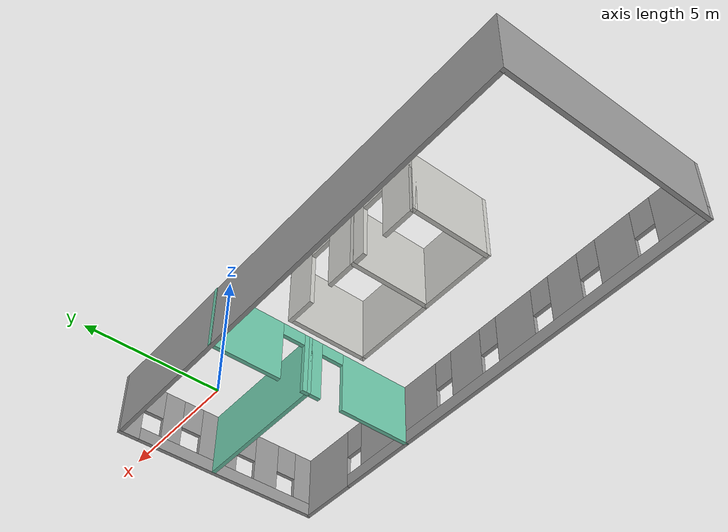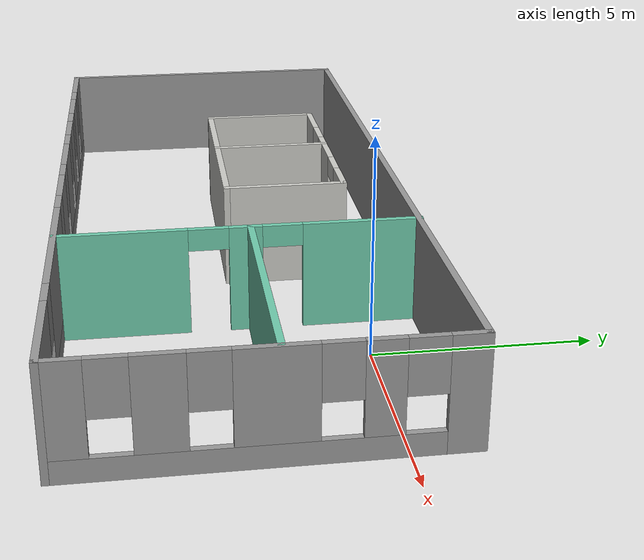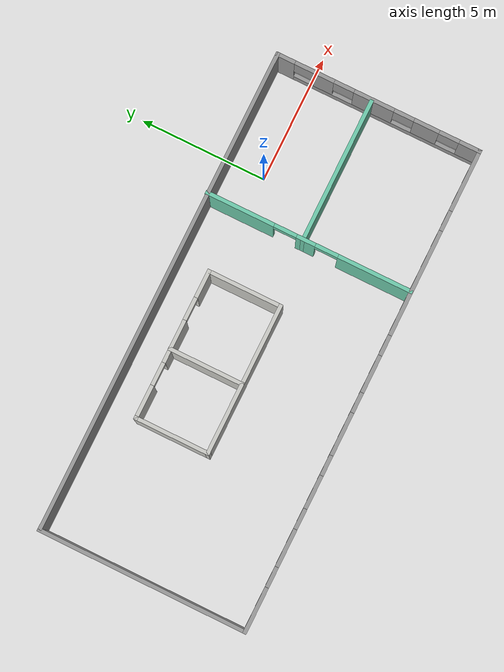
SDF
<?xml version='1.0'?>
<sdf version='1.6'>
  <model name='Building'>
    <pose frame=''>-5.59672 -2.64945 0 0 -0 0</pose>
    <link name='Wall_10'>
      <pose frame=''>0 -4.06159 0 0 -0 3.14159</pose>
      <visual name='Wall_10_Visual_0'>
        <pose frame=''>-8.37928 0 1.25 0 -0 0</pose>
        <geometry>
          <box>
            <size>2.49144 0.15 2.5</size>
          </box>
        </geometry>
        <material>
          <script>
            <uri>file://media/materials/scripts/gazebo.material</uri>
            <name>Gazebo/Grey</name>
          </script>
          <ambient>1 1 1 1</ambient>
        </material>
        <meta>
          <layer>0</layer>
        </meta>
      </visual>
      <collision name='Wall_10_Collision_0'>
        <geometry>
          <box>
            <size>2.49144 0.15 2.5</size>
          </box>
        </geometry>
        <pose frame=''>-8.37928 0 1.25 0 -0 0</pose>
      </collision>
      <visual name='Wall_10_Visual_1'>
        <pose frame=''>1.24572 0 0.25 0 -0 0</pose>
        <geometry>
          <box>
            <size>16.7586 0.15 0.5</size>
          </box>
        </geometry>
        <material>
          <script>
            <uri>file://media/materials/scripts/gazebo.material</uri>
            <name>Gazebo/Grey</name>
          </script>
          <ambient>1 1 1 1</ambient>
        </material>
        <meta>
          <layer>0</layer>
        </meta>
      </visual>
      <collision name='Wall_10_Collision_1'>
        <geometry>
          <box>
            <size>16.7586 0.15 0.5</size>
          </box>
        </geometry>
        <pose frame=''>1.24572 0 0.25 0 -0 0</pose>
      </collision>
      <visual name='Wall_10_Visual_2'>
        <pose frame=''>-4.235 0 1.5 0 -0 0</pose>
        <geometry>
          <box>
            <size>4.19712 0.15 2</size>
          </box>
        </geometry>
        <material>
          <script>
            <uri>file://media/materials/scripts/gazebo.material</uri>
            <name>Gazebo/Grey</name>
          </script>
          <ambient>1 1 1 1</ambient>
        </material>
        <meta>
          <layer>0</layer>
        </meta>
      </visual>
      <collision name='Wall_10_Collision_2'>
        <geometry>
          <box>
            <size>4.19712 0.15 2</size>
          </box>
        </geometry>
        <pose frame=''>-4.235 0 1.5 0 -0 0</pose>
      </collision>
      <visual name='Wall_10_Visual_3'>
        <pose frame=''>-0.596746 0 1.5 0 -0 0</pose>
        <geometry>
          <box>
            <size>1.47939 0.15 2</size>
          </box>
        </geometry>
        <material>
          <script>
            <uri>file://media/materials/scripts/gazebo.material</uri>
            <name>Gazebo/Grey</name>
          </script>
          <ambient>1 1 1 1</ambient>
        </material>
        <meta>
          <layer>0</layer>
        </meta>
      </visual>
      <collision name='Wall_10_Collision_3'>
        <geometry>
          <box>
            <size>1.47939 0.15 2</size>
          </box>
        </geometry>
        <pose frame=''>-0.596746 0 1.5 0 -0 0</pose>
      </collision>
      <visual name='Wall_10_Visual_4'>
        <pose frame=''>1.78785 0 1.5 0 -0 0</pose>
        <geometry>
          <box>
            <size>1.68979 0.15 2</size>
          </box>
        </geometry>
        <material>
          <script>
            <uri>file://media/materials/scripts/gazebo.material</uri>
            <name>Gazebo/Grey</name>
          </script>
          <ambient>1 1 1 1</ambient>
        </material>
        <meta>
          <layer>0</layer>
        </meta>
      </visual>
      <collision name='Wall_10_Collision_4'>
        <geometry>
          <box>
            <size>1.68979 0.15 2</size>
          </box>
        </geometry>
        <pose frame=''>1.78785 0 1.5 0 -0 0</pose>
      </collision>
      <visual name='Wall_10_Visual_5'>
        <pose frame=''>4.08477 0 1.5 0 -0 0</pose>
        <geometry>
          <box>
            <size>1.30405 0.15 2</size>
          </box>
        </geometry>
        <material>
          <script>
            <uri>file://media/materials/scripts/gazebo.material</uri>
            <name>Gazebo/Grey</name>
          </script>
          <ambient>1 1 1 1</ambient>
        </material>
        <meta>
          <layer>0</layer>
        </meta>
      </visual>
      <collision name='Wall_10_Collision_5'>
        <geometry>
          <box>
            <size>1.30405 0.15 2</size>
          </box>
        </geometry>
        <pose frame=''>4.08477 0 1.5 0 -0 0</pose>
      </collision>
      <visual name='Wall_10_Visual_6'>
        <pose frame=''>6.27649 0 1.5 0 -0 0</pose>
        <geometry>
          <box>
            <size>1.47939 0.15 2</size>
          </box>
        </geometry>
        <material>
          <script>
            <uri>file://media/materials/scripts/gazebo.material</uri>
            <name>Gazebo/Grey</name>
          </script>
          <ambient>1 1 1 1</ambient>
        </material>
        <meta>
          <layer>0</layer>
        </meta>
      </visual>
      <collision name='Wall_10_Collision_6'>
        <geometry>
          <box>
            <size>1.47939 0.15 2</size>
          </box>
        </geometry>
        <pose frame=''>6.27649 0 1.5 0 -0 0</pose>
      </collision>
      <visual name='Wall_10_Visual_7'>
        <pose frame=''>8.72059 0 1.5 0 -0 0</pose>
        <geometry>
          <box>
            <size>1.80882 0.15 2</size>
          </box>
        </geometry>
        <material>
          <script>
            <uri>file://media/materials/scripts/gazebo.material</uri>
            <name>Gazebo/Grey</name>
          </script>
          <ambient>1 1 1 1</ambient>
        </material>
        <meta>
          <layer>0</layer>
        </meta>
      </visual>
      <collision name='Wall_10_Collision_7'>
        <geometry>
          <box>
            <size>1.80882 0.15 2</size>
          </box>
        </geometry>
        <pose frame=''>8.72059 0 1.5 0 -0 0</pose>
      </collision>
      <visual name='Wall_10_Visual_8'>
        <pose frame=''>-6.73356 0 1.9 0 -0 0</pose>
        <geometry>
          <box>
            <size>0.8 0.15 1.2</size>
          </box>
        </geometry>
        <material>
          <script>
            <uri>file://media/materials/scripts/gazebo.material</uri>
            <name>Gazebo/Grey</name>
          </script>
          <ambient>1 1 1 1</ambient>
        </material>
        <meta>
          <layer>0</layer>
        </meta>
      </visual>
      <collision name='Wall_10_Collision_8'>
        <geometry>
          <box>
            <size>0.8 0.15 1.2</size>
          </box>
        </geometry>
        <pose frame=''>-6.73356 0 1.9 0 -0 0</pose>
      </collision>
      <visual name='Wall_10_Visual_9'>
        <pose frame=''>-1.73644 0 1.9 0 -0 0</pose>
        <geometry>
          <box>
            <size>0.8 0.15 1.2</size>
          </box>
        </geometry>
        <material>
          <script>
            <uri>file://media/materials/scripts/gazebo.material</uri>
            <name>Gazebo/Grey</name>
          </script>
          <ambient>1 1 1 1</ambient>
        </material>
        <meta>
          <layer>0</layer>
        </meta>
      </visual>
      <collision name='Wall_10_Collision_9'>
        <geometry>
          <box>
            <size>0.8 0.15 1.2</size>
          </box>
        </geometry>
        <pose frame=''>-1.73644 0 1.9 0 -0 0</pose>
      </collision>
      <visual name='Wall_10_Visual_10'>
        <pose frame=''>0.542949 0 1.9 0 -0 0</pose>
        <geometry>
          <box>
            <size>0.8 0.15 1.2</size>
          </box>
        </geometry>
        <material>
          <script>
            <uri>file://media/materials/scripts/gazebo.material</uri>
            <name>Gazebo/Grey</name>
          </script>
          <ambient>1 1 1 1</ambient>
        </material>
        <meta>
          <layer>0</layer>
        </meta>
      </visual>
      <collision name='Wall_10_Collision_10'>
        <geometry>
          <box>
            <size>0.8 0.15 1.2</size>
          </box>
        </geometry>
        <pose frame=''>0.542949 0 1.9 0 -0 0</pose>
      </collision>
      <visual name='Wall_10_Visual_11'>
        <pose frame=''>3.03274 0 1.9 0 -0 0</pose>
        <geometry>
          <box>
            <size>0.8 0.15 1.2</size>
          </box>
        </geometry>
        <material>
          <script>
            <uri>file://media/materials/scripts/gazebo.material</uri>
            <name>Gazebo/Grey</name>
          </script>
          <ambient>1 1 1 1</ambient>
        </material>
        <meta>
          <layer>0</layer>
        </meta>
      </visual>
      <collision name='Wall_10_Collision_11'>
        <geometry>
          <box>
            <size>0.8 0.15 1.2</size>
          </box>
        </geometry>
        <pose frame=''>3.03274 0 1.9 0 -0 0</pose>
      </collision>
      <visual name='Wall_10_Visual_12'>
        <pose frame=''>5.1368 0 1.9 0 -0 0</pose>
        <geometry>
          <box>
            <size>0.8 0.15 1.2</size>
          </box>
        </geometry>
        <material>
          <script>
            <uri>file://media/materials/scripts/gazebo.material</uri>
            <name>Gazebo/Grey</name>
          </script>
          <ambient>1 1 1 1</ambient>
        </material>
        <meta>
          <layer>0</layer>
        </meta>
      </visual>
      <collision name='Wall_10_Collision_12'>
        <geometry>
          <box>
            <size>0.8 0.15 1.2</size>
          </box>
        </geometry>
        <pose frame=''>5.1368 0 1.9 0 -0 0</pose>
      </collision>
      <visual name='Wall_10_Visual_13'>
        <pose frame=''>7.41618 0 1.9 0 -0 0</pose>
        <geometry>
          <box>
            <size>0.8 0.15 1.2</size>
          </box>
        </geometry>
        <material>
          <script>
            <uri>file://media/materials/scripts/gazebo.material</uri>
            <name>Gazebo/Grey</name>
          </script>
          <ambient>1 1 1 1</ambient>
        </material>
        <meta>
          <layer>0</layer>
        </meta>
      </visual>
      <collision name='Wall_10_Collision_13'>
        <geometry>
          <box>
            <size>0.8 0.15 1.2</size>
          </box>
        </geometry>
        <pose frame=''>7.41618 0 1.9 0 -0 0</pose>
      </collision>
    </link>
    <link name='Wall_11'>
      <collision name='Wall_11_Collision'>
        <geometry>
          <box>
            <size>8.25 0.15 2.5</size>
          </box>
        </geometry>
        <pose frame=''>0 0 1.25 0 -0 0</pose>
      </collision>
      <visual name='Wall_11_Visual'>
        <pose frame=''>0 0 1.25 0 -0 0</pose>
        <geometry>
          <box>
            <size>8.25 0.15 2.5</size>
          </box>
        </geometry>
        <material>
          <script>
            <uri>file://media/materials/scripts/gazebo.material</uri>
            <name>Gazebo/Grey</name>
          </script>
          <ambient>1 1 1 1</ambient>
        </material>
        <meta>
          <layer>0</layer>
        </meta>
      </visual>
      <pose frame=''>-9.55 -0.011594 0 0 -0 1.5708</pose>
    </link>
    <link name='Wall_13'>
      <pose frame=''>3.88768 0.011594 0 0 0 -1.5708</pose>
      <visual name='Wall_13_Visual_0'>
        <pose frame=''>-2.75451 0 1.25 0 -0 0</pose>
        <geometry>
          <box>
            <size>2.74098 0.15 2.5</size>
          </box>
        </geometry>
        <material>
          <script>
            <uri>file://media/materials/scripts/gazebo.material</uri>
            <name>Gazebo/Grey</name>
          </script>
          <ambient>0.435294 0.796078 0.67451 1</ambient>
        </material>
        <meta>
          <layer>0</layer>
        </meta>
      </visual>
      <collision name='Wall_13_Collision_0'>
        <geometry>
          <box>
            <size>2.74098 0.15 2.5</size>
          </box>
        </geometry>
        <pose frame=''>-2.75451 0 1.25 0 -0 0</pose>
      </collision>
      <visual name='Wall_13_Visual_1'>
        <pose frame=''>-0.109467 0 1.25 0 -0 0</pose>
        <geometry>
          <box>
            <size>0.749111 0.15 2.5</size>
          </box>
        </geometry>
        <material>
          <script>
            <uri>file://media/materials/scripts/gazebo.material</uri>
            <name>Gazebo/Grey</name>
          </script>
          <ambient>0.435294 0.796078 0.67451 1</ambient>
        </material>
        <meta>
          <layer>0</layer>
        </meta>
      </visual>
      <collision name='Wall_13_Collision_1'>
        <geometry>
          <box>
            <size>0.749111 0.15 2.5</size>
          </box>
        </geometry>
        <pose frame=''>-0.109467 0 1.25 0 -0 0</pose>
      </collision>
      <visual name='Wall_13_Visual_2'>
        <pose frame=''>2.64504 0 1.25 0 -0 0</pose>
        <geometry>
          <box>
            <size>2.95991 0.15 2.5</size>
          </box>
        </geometry>
        <material>
          <script>
            <uri>file://media/materials/scripts/gazebo.material</uri>
            <name>Gazebo/Grey</name>
          </script>
          <ambient>0.435294 0.796078 0.67451 1</ambient>
        </material>
        <meta>
          <layer>0</layer>
        </meta>
      </visual>
      <collision name='Wall_13_Collision_2'>
        <geometry>
          <box>
            <size>2.95991 0.15 2.5</size>
          </box>
        </geometry>
        <pose frame=''>2.64504 0 1.25 0 -0 0</pose>
      </collision>
      <visual name='Wall_13_Visual_3'>
        <pose frame=''>-0.934023 0 2.25 0 -0 0</pose>
        <geometry>
          <box>
            <size>0.9 0.15 0.5</size>
          </box>
        </geometry>
        <material>
          <script>
            <uri>file://media/materials/scripts/gazebo.material</uri>
            <name>Gazebo/Grey</name>
          </script>
          <ambient>0.435294 0.796078 0.67451 1</ambient>
        </material>
        <meta>
          <layer>0</layer>
        </meta>
      </visual>
      <collision name='Wall_13_Collision_3'>
        <geometry>
          <box>
            <size>0.9 0.15 0.5</size>
          </box>
        </geometry>
        <pose frame=''>-0.934023 0 2.25 0 -0 0</pose>
      </collision>
      <visual name='Wall_13_Visual_4'>
        <pose frame=''>0.715088 0 2.25 0 -0 0</pose>
        <geometry>
          <box>
            <size>0.9 0.15 0.5</size>
          </box>
        </geometry>
        <material>
          <script>
            <uri>file://media/materials/scripts/gazebo.material</uri>
            <name>Gazebo/Grey</name>
          </script>
          <ambient>0.435294 0.796078 0.67451 1</ambient>
        </material>
        <meta>
          <layer>0</layer>
        </meta>
      </visual>
      <collision name='Wall_13_Collision_4'>
        <geometry>
          <box>
            <size>0.9 0.15 0.5</size>
          </box>
        </geometry>
        <pose frame=''>0.715088 0 2.25 0 -0 0</pose>
      </collision>
    </link>
    <link name='Wall_15'>
      <collision name='Wall_15_Collision'>
        <geometry>
          <box>
            <size>5.75 0.15 2.5</size>
          </box>
        </geometry>
        <pose frame=''>0 0 1.25 0 -0 0</pose>
      </collision>
      <visual name='Wall_15_Visual'>
        <pose frame=''>0 0 1.25 0 -0 0</pose>
        <geometry>
          <box>
            <size>5.75 0.15 2.5</size>
          </box>
        </geometry>
        <material>
          <script>
            <uri>file://media/materials/scripts/gazebo.material</uri>
            <name>Gazebo/Grey</name>
          </script>
          <ambient>0.435294 0.796078 0.67451 1</ambient>
        </material>
        <meta>
          <layer>0</layer>
        </meta>
      </visual>
      <pose frame=''>6.68768 0.235507 0 0 -0 0</pose>
    </link>
    <link name='Wall_17'>
      <pose frame=''>-1.56993 2.75145 0 0 -0 0</pose>
      <visual name='Wall_17_Visual_0'>
        <pose frame=''>-2.31545 0 1.25 0 -0 0</pose>
        <geometry>
          <box>
            <size>1.36911 0.15 2.5</size>
          </box>
        </geometry>
        <material>
          <script>
            <uri>file://media/materials/scripts/gazebo.material</uri>
            <name>Gazebo/CeilingTiled</name>
          </script>
          <ambient>1 1 1 1</ambient>
        </material>
        <meta>
          <layer>0</layer>
        </meta>
      </visual>
      <collision name='Wall_17_Collision_0'>
        <geometry>
          <box>
            <size>1.36911 0.15 2.5</size>
          </box>
        </geometry>
        <pose frame=''>-2.31545 0 1.25 0 -0 0</pose>
      </collision>
      <visual name='Wall_17_Visual_1'>
        <pose frame=''>0.119847 0 1.25 0 -0 0</pose>
        <geometry>
          <box>
            <size>1.70148 0.15 2.5</size>
          </box>
        </geometry>
        <material>
          <script>
            <uri>file://media/materials/scripts/gazebo.material</uri>
            <name>Gazebo/CeilingTiled</name>
          </script>
          <ambient>1 1 1 1</ambient>
        </material>
        <meta>
          <layer>0</layer>
        </meta>
      </visual>
      <collision name='Wall_17_Collision_1'>
        <geometry>
          <box>
            <size>1.70148 0.15 2.5</size>
          </box>
        </geometry>
        <pose frame=''>0.119847 0 1.25 0 -0 0</pose>
      </collision>
      <visual name='Wall_17_Visual_2'>
        <pose frame=''>2.43529 0 1.25 0 -0 0</pose>
        <geometry>
          <box>
            <size>1.12941 0.15 2.5</size>
          </box>
        </geometry>
        <material>
          <script>
            <uri>file://media/materials/scripts/gazebo.material</uri>
            <name>Gazebo/CeilingTiled</name>
          </script>
          <ambient>1 1 1 1</ambient>
        </material>
        <meta>
          <layer>0</layer>
        </meta>
      </visual>
      <collision name='Wall_17_Collision_2'>
        <geometry>
          <box>
            <size>1.12941 0.15 2.5</size>
          </box>
        </geometry>
        <pose frame=''>2.43529 0 1.25 0 -0 0</pose>
      </collision>
      <visual name='Wall_17_Visual_3'>
        <pose frame=''>-1.1809 0 2.25 0 -0 0</pose>
        <geometry>
          <box>
            <size>0.9 0.15 0.5</size>
          </box>
        </geometry>
        <material>
          <script>
            <uri>file://media/materials/scripts/gazebo.material</uri>
            <name>Gazebo/CeilingTiled</name>
          </script>
          <ambient>1 1 1 1</ambient>
        </material>
        <meta>
          <layer>0</layer>
        </meta>
      </visual>
      <collision name='Wall_17_Collision_3'>
        <geometry>
          <box>
            <size>0.9 0.15 0.5</size>
          </box>
        </geometry>
        <pose frame=''>-1.1809 0 2.25 0 -0 0</pose>
      </collision>
      <visual name='Wall_17_Visual_4'>
        <pose frame=''>1.42059 0 2.25 0 -0 0</pose>
        <geometry>
          <box>
            <size>0.9 0.15 0.5</size>
          </box>
        </geometry>
        <material>
          <script>
            <uri>file://media/materials/scripts/gazebo.material</uri>
            <name>Gazebo/CeilingTiled</name>
          </script>
          <ambient>1 1 1 1</ambient>
        </material>
        <meta>
          <layer>0</layer>
        </meta>
      </visual>
      <collision name='Wall_17_Collision_4'>
        <geometry>
          <box>
            <size>0.9 0.15 0.5</size>
          </box>
        </geometry>
        <pose frame=''>1.42059 0 2.25 0 -0 0</pose>
      </collision>
    </link>
    <link name='Wall_18'>
      <collision name='Wall_18_Collision'>
        <geometry>
          <box>
            <size>3 0.15 2.5</size>
          </box>
        </geometry>
        <pose frame=''>0 0 1.25 0 -0 0</pose>
      </collision>
      <visual name='Wall_18_Visual'>
        <pose frame=''>0 0 1.25 0 -0 0</pose>
        <geometry>
          <box>
            <size>3 0.15 2.5</size>
          </box>
        </geometry>
        <material>
          <script>
            <uri>file://media/materials/scripts/gazebo.material</uri>
            <name>Gazebo/CeilingTiled</name>
          </script>
          <ambient>1 1 1 1</ambient>
        </material>
        <meta>
          <layer>0</layer>
        </meta>
      </visual>
      <pose frame=''>1.35507 1.32645 0 0 0 -1.5708</pose>
    </link>
    <link name='Wall_19'>
      <collision name='Wall_19_Collision'>
        <geometry>
          <box>
            <size>6 0.15 2.5</size>
          </box>
        </geometry>
        <pose frame=''>0 0 1.25 0 -0 0</pose>
      </collision>
      <visual name='Wall_19_Visual'>
        <pose frame=''>0 0 1.25 0 -0 0</pose>
        <geometry>
          <box>
            <size>6 0.15 2.5</size>
          </box>
        </geometry>
        <material>
          <script>
            <uri>file://media/materials/scripts/gazebo.material</uri>
            <name>Gazebo/CeilingTiled</name>
          </script>
          <ambient>1 1 1 1</ambient>
        </material>
        <meta>
          <layer>0</layer>
        </meta>
      </visual>
      <pose frame=''>-1.56993 -0.098551 0 0 -0 3.14159</pose>
    </link>
    <link name='Wall_20'>
      <collision name='Wall_20_Collision'>
        <geometry>
          <box>
            <size>3 0.15 2.5</size>
          </box>
        </geometry>
        <pose frame=''>0 0 1.25 0 -0 0</pose>
      </collision>
      <visual name='Wall_20_Visual'>
        <pose frame=''>0 0 1.25 0 -0 0</pose>
        <geometry>
          <box>
            <size>3 0.15 2.5</size>
          </box>
        </geometry>
        <material>
          <script>
            <uri>file://media/materials/scripts/gazebo.material</uri>
            <name>Gazebo/CeilingTiled</name>
          </script>
          <ambient>1 1 1 1</ambient>
        </material>
        <meta>
          <layer>0</layer>
        </meta>
      </visual>
      <pose frame=''>-4.49493 1.32645 0 0 -0 1.5708</pose>
    </link>
    <link name='Wall_23'>
      <collision name='Wall_23_Collision'>
        <geometry>
          <box>
            <size>3 0.15 2.5</size>
          </box>
        </geometry>
        <pose frame=''>0 0 1.25 0 -0 0</pose>
      </collision>
      <visual name='Wall_23_Visual'>
        <pose frame=''>0 0 1.25 0 -0 0</pose>
        <geometry>
          <box>
            <size>3 0.15 2.5</size>
          </box>
        </geometry>
        <material>
          <script>
            <uri>file://media/materials/scripts/gazebo.material</uri>
            <name>Gazebo/CeilingTiled</name>
          </script>
          <ambient>1 1 1 1</ambient>
        </material>
        <meta>
          <layer>0</layer>
        </meta>
      </visual>
      <pose frame=''>-1.75334 1.33013 0 0 0 -1.5708</pose>
    </link>
    <link name='Wall_8'>
      <collision name='Wall_8_Collision'>
        <geometry>
          <box>
            <size>19.25 0.15 2.5</size>
          </box>
        </geometry>
        <pose frame=''>0 0 1.25 0 -0 0</pose>
      </collision>
      <visual name='Wall_8_Visual'>
        <pose frame=''>0 0 1.25 0 -0 0</pose>
        <geometry>
          <box>
            <size>19.25 0.15 2.5</size>
          </box>
        </geometry>
        <material>
          <script>
            <uri>file://media/materials/scripts/gazebo.material</uri>
            <name>Gazebo/Grey</name>
          </script>
          <ambient>1 1 1 1</ambient>
        </material>
        <meta>
          <layer>0</layer>
        </meta>
      </visual>
      <pose frame=''>0 4.03841 0 0 -0 0</pose>
    </link>
    <link name='Wall_9'>
      <pose frame=''>9.55 -0.011594 0 0 0 -1.5708</pose>
      <visual name='Wall_9_Visual_0'>
        <pose frame=''>-3.73293 0 1.25 0 -0 0</pose>
        <geometry>
          <box>
            <size>0.784146 0.15 2.5</size>
          </box>
        </geometry>
        <material>
          <script>
            <uri>file://media/materials/scripts/gazebo.material</uri>
            <name>Gazebo/Grey</name>
          </script>
          <ambient>1 1 1 1</ambient>
        </material>
        <meta>
          <layer>0</layer>
        </meta>
      </visual>
      <collision name='Wall_9_Collision_0'>
        <geometry>
          <box>
            <size>0.784146 0.15 2.5</size>
          </box>
        </geometry>
        <pose frame=''>-3.73293 0 1.25 0 -0 0</pose>
      </collision>
      <visual name='Wall_9_Visual_1'>
        <pose frame=''>0.392073 0 0.25 0 -0 0</pose>
        <geometry>
          <box>
            <size>7.46585 0.15 0.5</size>
          </box>
        </geometry>
        <material>
          <script>
            <uri>file://media/materials/scripts/gazebo.material</uri>
            <name>Gazebo/Grey</name>
          </script>
          <ambient>1 1 1 1</ambient>
        </material>
        <meta>
          <layer>0</layer>
        </meta>
      </visual>
      <collision name='Wall_9_Collision_1'>
        <geometry>
          <box>
            <size>7.46585 0.15 0.5</size>
          </box>
        </geometry>
        <pose frame=''>0.392073 0 0.25 0 -0 0</pose>
      </collision>
      <visual name='Wall_9_Visual_2'>
        <pose frame=''>-2.15184 0 1.5 0 -0 0</pose>
        <geometry>
          <box>
            <size>0.778039 0.15 2</size>
          </box>
        </geometry>
        <material>
          <script>
            <uri>file://media/materials/scripts/gazebo.material</uri>
            <name>Gazebo/Grey</name>
          </script>
          <ambient>1 1 1 1</ambient>
        </material>
        <meta>
          <layer>0</layer>
        </meta>
      </visual>
      <collision name='Wall_9_Collision_2'>
        <geometry>
          <box>
            <size>0.778039 0.15 2</size>
          </box>
        </geometry>
        <pose frame=''>-2.15184 0 1.5 0 -0 0</pose>
      </collision>
      <visual name='Wall_9_Visual_3'>
        <pose frame=''>-0.161753 0 1.5 0 -0 0</pose>
        <geometry>
          <box>
            <size>1.60213 0.15 2</size>
          </box>
        </geometry>
        <material>
          <script>
            <uri>file://media/materials/scripts/gazebo.material</uri>
            <name>Gazebo/Grey</name>
          </script>
          <ambient>1 1 1 1</ambient>
        </material>
        <meta>
          <layer>0</layer>
        </meta>
      </visual>
      <collision name='Wall_9_Collision_3'>
        <geometry>
          <box>
            <size>1.60213 0.15 2</size>
          </box>
        </geometry>
        <pose frame=''>-0.161753 0 1.5 0 -0 0</pose>
      </collision>
      <visual name='Wall_9_Visual_4'>
        <pose frame=''>1.9423 0 1.5 0 -0 0</pose>
        <geometry>
          <box>
            <size>1.00598 0.15 2</size>
          </box>
        </geometry>
        <material>
          <script>
            <uri>file://media/materials/scripts/gazebo.material</uri>
            <name>Gazebo/Grey</name>
          </script>
          <ambient>1 1 1 1</ambient>
        </material>
        <meta>
          <layer>0</layer>
        </meta>
      </visual>
      <collision name='Wall_9_Collision_4'>
        <geometry>
          <box>
            <size>1.00598 0.15 2</size>
          </box>
        </geometry>
        <pose frame=''>1.9423 0 1.5 0 -0 0</pose>
      </collision>
      <visual name='Wall_9_Visual_5'>
        <pose frame=''>3.68514 0 1.5 0 -0 0</pose>
        <geometry>
          <box>
            <size>0.879712 0.15 2</size>
          </box>
        </geometry>
        <material>
          <script>
            <uri>file://media/materials/scripts/gazebo.material</uri>
            <name>Gazebo/Grey</name>
          </script>
          <ambient>1 1 1 1</ambient>
        </material>
        <meta>
          <layer>0</layer>
        </meta>
      </visual>
      <collision name='Wall_9_Collision_5'>
        <geometry>
          <box>
            <size>0.879712 0.15 2</size>
          </box>
        </geometry>
        <pose frame=''>3.68514 0 1.5 0 -0 0</pose>
      </collision>
      <visual name='Wall_9_Visual_6'>
        <pose frame=''>-2.94085 0 1.9 0 -0 0</pose>
        <geometry>
          <box>
            <size>0.8 0.15 1.2</size>
          </box>
        </geometry>
        <material>
          <script>
            <uri>file://media/materials/scripts/gazebo.material</uri>
            <name>Gazebo/Grey</name>
          </script>
          <ambient>1 1 1 1</ambient>
        </material>
        <meta>
          <layer>0</layer>
        </meta>
      </visual>
      <collision name='Wall_9_Collision_6'>
        <geometry>
          <box>
            <size>0.8 0.15 1.2</size>
          </box>
        </geometry>
        <pose frame=''>-2.94085 0 1.9 0 -0 0</pose>
      </collision>
      <visual name='Wall_9_Visual_7'>
        <pose frame=''>-1.36282 0 1.9 0 -0 0</pose>
        <geometry>
          <box>
            <size>0.8 0.15 1.2</size>
          </box>
        </geometry>
        <material>
          <script>
            <uri>file://media/materials/scripts/gazebo.material</uri>
            <name>Gazebo/Grey</name>
          </script>
          <ambient>1 1 1 1</ambient>
        </material>
        <meta>
          <layer>0</layer>
        </meta>
      </visual>
      <collision name='Wall_9_Collision_7'>
        <geometry>
          <box>
            <size>0.8 0.15 1.2</size>
          </box>
        </geometry>
        <pose frame=''>-1.36282 0 1.9 0 -0 0</pose>
      </collision>
      <visual name='Wall_9_Visual_8'>
        <pose frame=''>1.03931 0 1.9 0 -0 0</pose>
        <geometry>
          <box>
            <size>0.8 0.15 1.2</size>
          </box>
        </geometry>
        <material>
          <script>
            <uri>file://media/materials/scripts/gazebo.material</uri>
            <name>Gazebo/Grey</name>
          </script>
          <ambient>1 1 1 1</ambient>
        </material>
        <meta>
          <layer>0</layer>
        </meta>
      </visual>
      <collision name='Wall_9_Collision_8'>
        <geometry>
          <box>
            <size>0.8 0.15 1.2</size>
          </box>
        </geometry>
        <pose frame=''>1.03931 0 1.9 0 -0 0</pose>
      </collision>
      <visual name='Wall_9_Visual_9'>
        <pose frame=''>2.84529 0 1.9 0 -0 0</pose>
        <geometry>
          <box>
            <size>0.8 0.15 1.2</size>
          </box>
        </geometry>
        <material>
          <script>
            <uri>file://media/materials/scripts/gazebo.material</uri>
            <name>Gazebo/Grey</name>
          </script>
          <ambient>1 1 1 1</ambient>
        </material>
        <meta>
          <layer>0</layer>
        </meta>
      </visual>
      <collision name='Wall_9_Collision_9'>
        <geometry>
          <box>
            <size>0.8 0.15 1.2</size>
          </box>
        </geometry>
        <pose frame=''>2.84529 0 1.9 0 -0 0</pose>
      </collision>
    </link>
    <static>1</static>
  </model>
</sdf>
